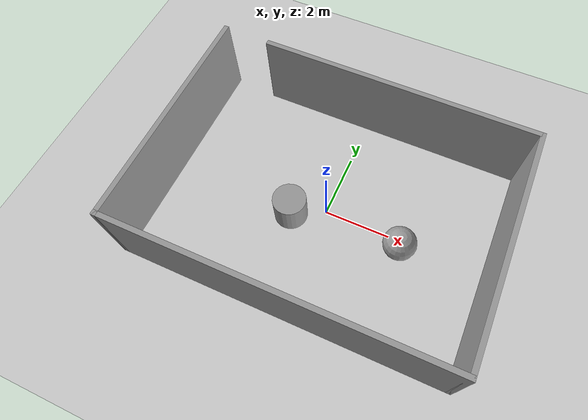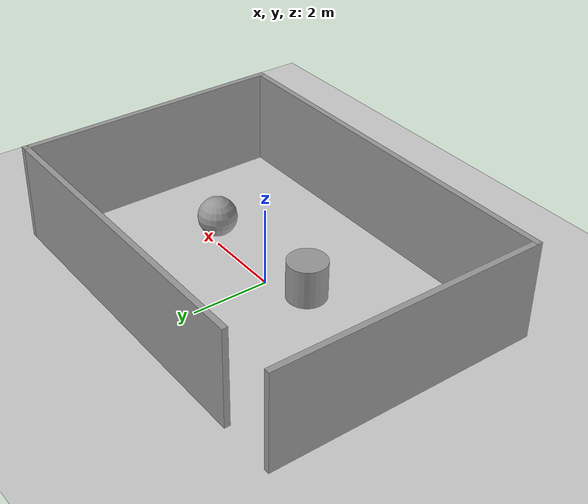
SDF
<sdf version="1.7">
 <world name="default">
  <light name="sun" type="directional">
   <pose>0 0 10 0 -0 0</pose>
   <diffuse>0.8 0.8 0.8 1</diffuse>
   <specular>0.2 0.2 0.2 1</specular>
   <attenuation>
    <range>1000</range>
    <constant>0.9</constant>
    <linear>0.01</linear>
    <quadratic>0.001</quadratic>
   </attenuation>
   <direction>-0.5 0.1 -0.9</direction>
   <spot><inner_angle>0</inner_angle><outer_angle>0</outer_angle><falloff>0</falloff></spot>
  </light>
  <model name="ground_plane">
   <static>1</static>
   <link name="link">
    <collision name="collision">
     <geometry><plane><normal>0 0 1</normal><size>100 100</size></plane></geometry>
     <surface>
      <contact><collide_bitmask>65535</collide_bitmask></contact>
      <friction><ode><mu>100</mu><mu2>50</mu2></ode></friction>
     </surface>
    </collision>
    <visual name="visual">
     <cast_shadows>0</cast_shadows>
     <geometry><plane><normal>0 0 1</normal><size>100 100</size></plane></geometry>
     <material>
      <script><uri>file://media/materials/scripts/gazebo.material</uri><name>Gazebo/Grey</name></script>
     </material>
    </visual>
   </link>
  </model>
  <gravity>0 0 -9.8</gravity>
  <magnetic_field>6e-06 2.3e-05 -4.2e-05</magnetic_field>
  <atmosphere type="adiabatic"/>
  <physics type="ode">
   <max_step_size>0.001</max_step_size>
   <real_time_factor>1</real_time_factor>
   <real_time_update_rate>1000</real_time_update_rate>
  </physics>
  <scene><ambient>0.4 0.4 0.4 1</ambient><background>0.7 0.7 0.7 1</background><shadows>1</shadows></scene>
  <audio><device>default</device></audio>
  <spherical_coordinates>
   <surface_model>EARTH_WGS84</surface_model>
   <latitude_deg>0</latitude_deg>
   <longitude_deg>0</longitude_deg>
   <elevation>0</elevation>
   <heading_deg>0</heading_deg>
  </spherical_coordinates>
  <model name="room">
   <pose>0.031987 0.007756 0 0 -0 0</pose>
   <link name="Wall_0">
    <collision name="Wall_0_Collision">
     <geometry><box><size>7 0.15 2.5</size></box></geometry>
     <pose>0 0 1.25 0 -0 0</pose>
    </collision>
    <visual name="Wall_0_Visual">
     <pose>0 0 1.25 0 -0 0</pose>
     <geometry><box><size>7 0.15 2.5</size></box></geometry>
     <material>
      <script><uri>file://media/materials/scripts/gazebo.material</uri><name>Gazebo/Grey</name></script>
      <ambient>1 1 1 1</ambient>
     </material>
     <meta><layer>0</layer></meta>
    </visual>
    <pose>-4.925 -0 0 0 -0 -1.5708</pose>
   </link>
   <link name="Wall_1">
    <collision name="Wall_1_Collision">
     <geometry><box><size>10 0.15 2.5</size></box></geometry>
     <pose>0 0 1.25 0 -0 0</pose>
    </collision>
    <visual name="Wall_1_Visual">
     <pose>0 0 1.25 0 -0 0</pose>
     <geometry><box><size>10 0.15 2.5</size></box></geometry>
     <material>
      <script><uri>file://media/materials/scripts/gazebo.material</uri><name>Gazebo/Grey</name></script>
      <ambient>1 1 1 1</ambient>
     </material>
     <meta><layer>0</layer></meta>
    </visual>
    <pose>0 -3.425 0 0 -0 0</pose>
   </link>
   <link name="Wall_2">
    <collision name="Wall_2_Collision">
     <geometry><box><size>7 0.15 2.5</size></box></geometry>
     <pose>0 0 1.25 0 -0 0</pose>
    </collision>
    <visual name="Wall_2_Visual">
     <pose>0 0 1.25 0 -0 0</pose>
     <geometry><box><size>7 0.15 2.5</size></box></geometry>
     <material>
      <script><uri>file://media/materials/scripts/gazebo.material</uri><name>Gazebo/Grey</name></script>
      <ambient>1 1 1 1</ambient>
     </material>
     <meta><layer>0</layer></meta>
    </visual>
    <pose>4.925 -0 0 0 -0 1.5708</pose>
   </link>
   <link name="Wall_3">
    <collision name="Wall_3_Collision">
     <geometry><box><size>8.5 0.15 2.5</size></box></geometry>
     <pose>0 0 1.25 0 -0 0</pose>
    </collision>
    <visual name="Wall_3_Visual">
     <pose>0 0 1.25 0 -0 0</pose>
     <geometry><box><size>8.5 0.15 2.5</size></box></geometry>
     <material>
      <script><uri>file://media/materials/scripts/gazebo.material</uri><name>Gazebo/Grey</name></script>
      <ambient>1 1 1 1</ambient>
     </material>
     <meta><layer>0</layer></meta>
    </visual>
    <pose>0.75 3.425 0 0 -0 3.14159</pose>
   </link>
   <static>1</static>
  </model>
  <model name="unit_cylinder">
   <pose>-0.96811 -0.470339 0.499993 -3e-06 -4e-06 -0</pose>
   <link name="link">
    <inertial>
     <mass>1</mass>
     <inertia><ixx>0.145833</ixx><ixy>0</ixy><ixz>0</ixz><iyy>0.145833</iyy><iyz>0</iyz><izz>0.125</izz></inertia>
    </inertial>
    <collision name="collision">
     <geometry><cylinder><radius>0.5</radius><length>1</length></cylinder></geometry>
    </collision>
    <visual name="visual">
     <geometry><cylinder><radius>0.5</radius><length>1</length></cylinder></geometry>
     <material>
      <script><name>Gazebo/Grey</name><uri>file://media/materials/scripts/gazebo.material</uri></script>
     </material>
    </visual>
   </link>
  </model>
  <model name="unit_sphere">
   <pose>2.40447 -0.268104 0.5 0 -0 0</pose>
   <link name="link">
    <inertial>
     <mass>1</mass>
     <inertia><ixx>0.1</ixx><ixy>0</ixy><ixz>0</ixz><iyy>0.1</iyy><iyz>0</iyz><izz>0.1</izz></inertia>
    </inertial>
    <collision name="collision"><geometry><sphere><radius>0.5</radius></sphere></geometry></collision>
    <visual name="visual">
     <geometry><sphere><radius>0.5</radius></sphere></geometry>
     <material>
      <script><name>Gazebo/Grey</name><uri>file://media/materials/scripts/gazebo.material</uri></script>
     </material>
    </visual>
   </link>
  </model>
 </world>
</sdf>
